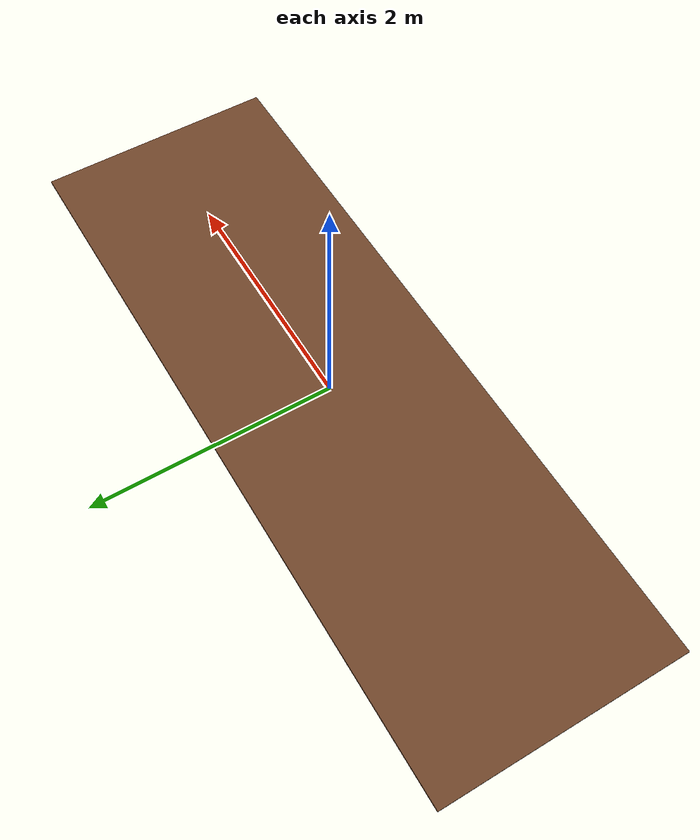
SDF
<?xml version="1.0"?>
<sdf version="1.7">
  <model name="dirt_path">
    <!-- A simple dirt road surface. -->
    <link name="path_surface">
      <pose>0 0 0.01 0 0 0</pose>
      <inertial>
        <mass>1.0</mass>
        <inertia>
          <ixx>0.01</ixx>
          <iyy>0.01</iyy>
          <izz>0.01</izz>
          <ixy>0.0</ixy>
          <ixz>0.0</ixz>
          <iyz>0.0</iyz>
        </inertia>
      </inertial>

      <collision name="path_collision">
        <geometry>
          <box>
            <size>6.0 2.0 0.02</size>
          </box>
        </geometry>
      </collision>

      <visual name="path_visual">
        <geometry>
          <box>
            <size>6.0 2.0 0.02</size>
          </box>
        </geometry>
        <material>
          <ambient>0.35 0.22 0.13 1.0</ambient>
          <diffuse>0.45 0.28 0.17 1.0</diffuse>
          <specular>0.08 0.08 0.08 1.0</specular>
        </material>
      </visual>
    </link>
  </model>
</sdf>
